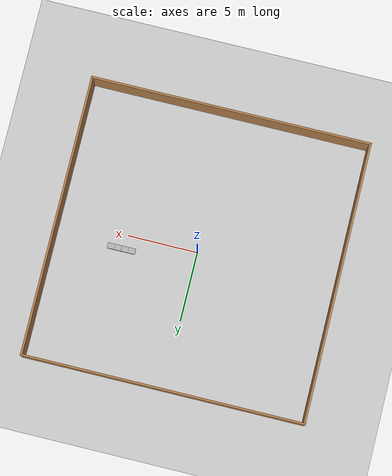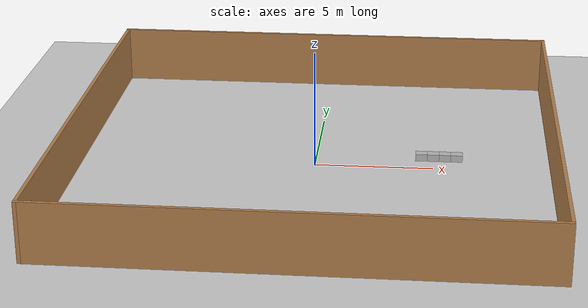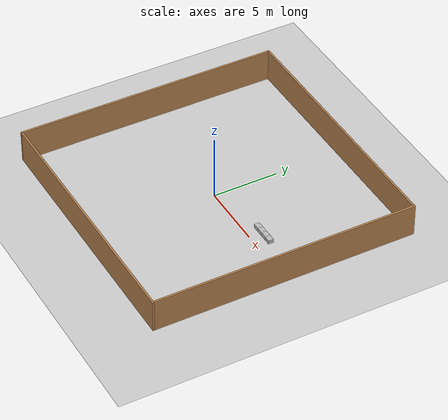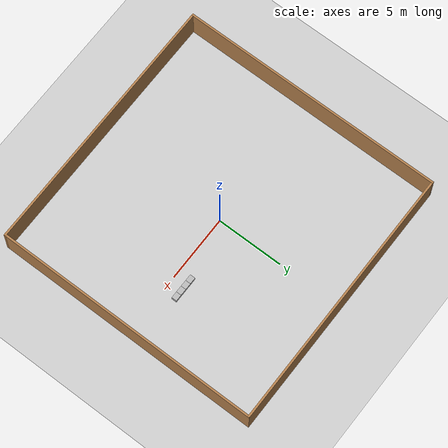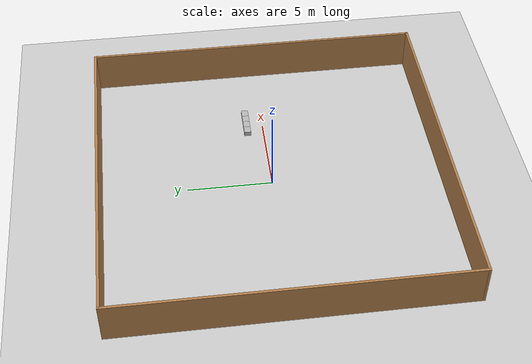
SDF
<sdf version="1.7">
 <world name="default">
  <light name="sun" type="directional">
   <pose>0 0 10 0 -0 0</pose>
   <diffuse>0.8 0.8 0.8 1</diffuse>
   <specular>0.2 0.2 0.2 1</specular>
   <attenuation>
    <range>1000</range>
    <constant>0.9</constant>
    <linear>0.01</linear>
    <quadratic>0.001</quadratic>
   </attenuation>
   <direction>-0.5 0.1 -0.9</direction>
   <spot><inner_angle>0</inner_angle><outer_angle>0</outer_angle><falloff>0</falloff></spot>
  </light>
  <model name="ground_plane">
   <static>1</static>
   <link name="link">
    <collision name="collision">
     <geometry><plane><normal>0 0 1</normal><size>100 100</size></plane></geometry>
     <surface><friction><ode><mu>100</mu><mu2>50</mu2></ode></friction></surface>
    </collision>
    <visual name="visual">
     <cast_shadows>0</cast_shadows>
     <geometry><plane><normal>0 0 1</normal><size>100 100</size></plane></geometry>
     <material>
      <script><uri>file://media/materials/scripts/gazebo.material</uri><name>Gazebo/Grey</name></script>
     </material>
    </visual>
   </link>
  </model>
  <gravity>0 0 -9.8</gravity>
  <magnetic_field>6e-06 2.3e-05 -4.2e-05</magnetic_field>
  <atmosphere type="adiabatic"/>
  <physics type="ode">
   <max_step_size>0.001</max_step_size>
   <real_time_factor>1</real_time_factor>
   <real_time_update_rate>10000</real_time_update_rate>
  </physics>
  <scene><ambient>0.4 0.4 0.4 1</ambient><background>0.7 0.7 0.7 1</background><shadows>1</shadows></scene>
  <spherical_coordinates>
   <surface_model>EARTH_WGS84</surface_model>
   <latitude_deg>0</latitude_deg>
   <longitude_deg>0</longitude_deg>
   <elevation>0</elevation>
   <heading_deg>0</heading_deg>
  </spherical_coordinates>
  <model name="surroundings">
   <link name="Wall_0">
    <collision name="Wall_0_Collision">
     <geometry><box><size>20.15 0.15 2.5</size></box></geometry>
     <pose>0 0 1.25 0 -0 0</pose>
    </collision>
    <visual name="Wall_0_Visual">
     <pose>0 0 1.25 0 -0 0</pose>
     <geometry><box><size>20.15 0.15 2.5</size></box></geometry>
     <material>
      <script><uri>file://media/materials/scripts/gazebo.material</uri><name>Gazebo/Wood</name></script>
      <ambient>1 1 1 1</ambient>
     </material>
     <meta><layer>0</layer></meta>
    </visual>
    <pose>10 0 0 0 -0 -1.5708</pose>
   </link>
   <link name="Wall_1">
    <collision name="Wall_1_Collision">
     <geometry><box><size>20.15 0.15 2.5</size></box></geometry>
     <pose>0 0 1.25 0 -0 0</pose>
    </collision>
    <visual name="Wall_1_Visual">
     <pose>0 0 1.25 0 -0 0</pose>
     <geometry><box><size>20.15 0.15 2.5</size></box></geometry>
     <material>
      <script><uri>file://media/materials/scripts/gazebo.material</uri><name>Gazebo/Wood</name></script>
      <ambient>1 1 1 1</ambient>
     </material>
     <meta><layer>0</layer></meta>
    </visual>
    <pose>0 -10 0 0 -0 3.14159</pose>
   </link>
   <link name="Wall_2">
    <collision name="Wall_2_Collision">
     <geometry><box><size>20.15 0.15 2.5</size></box></geometry>
     <pose>0 0 1.25 0 -0 0</pose>
    </collision>
    <visual name="Wall_2_Visual">
     <pose>0 0 1.25 0 -0 0</pose>
     <geometry><box><size>20.15 0.15 2.5</size></box></geometry>
     <material>
      <script><uri>file://media/materials/scripts/gazebo.material</uri><name>Gazebo/Wood</name></script>
      <ambient>1 1 1 1</ambient>
     </material>
     <meta><layer>0</layer></meta>
    </visual>
    <pose>-10 0 0 0 -0 1.5708</pose>
   </link>
   <link name="Wall_3">
    <collision name="Wall_3_Collision">
     <geometry><box><size>20.15 0.15 2.5</size></box></geometry>
     <pose>0 0 1.25 0 -0 0</pose>
    </collision>
    <visual name="Wall_3_Visual">
     <pose>0 0 1.25 0 -0 0</pose>
     <geometry><box><size>20.15 0.15 2.5</size></box></geometry>
     <material>
      <script><uri>file://media/materials/scripts/gazebo.material</uri><name>Gazebo/Wood</name></script>
      <ambient>1 1 1 1</ambient>
     </material>
     <meta><layer>0</layer></meta>
    </visual>
    <pose>0 10 0 0 -0 0</pose>
   </link>
   <static>1</static>
  </model>
  <model name="cardboard_box_0">
   <pose>4.5 0.999999 0.149 0 -0 3e-06</pose>
   <link name="link">
    <inertial>
     <mass>2</mass>
     <inertia>
      <ixx>0.0416667</ixx>
      <ixy>0</ixy>
      <ixz>0</ixz>
      <iyy>0.0566667</iyy>
      <iyz>0</iyz>
      <izz>0.0683333</izz>
     </inertia>
    </inertial>
    <collision name="collision">
     <geometry><box><size>0.5 0.4 0.3</size></box></geometry>
     <surface>
      <friction><ode><mu>1</mu><mu2>1</mu2></ode></friction>
      <contact><ode><kp>1e+07</kp><kd>1</kd><min_depth>0.001</min_depth><max_vel>0.1</max_vel></ode></contact>
     </surface>
    </collision>
    <visual name="visual">
     <pose>0 0 -0.15 0 -0 0</pose>
     <geometry>
      <mesh><uri>model://cardboard_box/meshes/cardboard_box.dae</uri><scale>1.25932 1.00745 0.755591</scale></mesh>
     </geometry>
    </visual>
   </link>
  </model>
  <model name="cardboard_box_1">
   <pose>4.99999 1 0.149 0 -0 6e-06</pose>
   <link name="link">
    <inertial>
     <mass>2</mass>
     <inertia>
      <ixx>0.0416667</ixx>
      <ixy>0</ixy>
      <ixz>0</ixz>
      <iyy>0.0566667</iyy>
      <iyz>0</iyz>
      <izz>0.0683333</izz>
     </inertia>
    </inertial>
    <collision name="collision">
     <geometry><box><size>0.5 0.4 0.3</size></box></geometry>
     <surface>
      <friction><ode><mu>1</mu><mu2>1</mu2></ode></friction>
      <contact><ode><kp>1e+07</kp><kd>1</kd><min_depth>0.001</min_depth><max_vel>0.1</max_vel></ode></contact>
     </surface>
    </collision>
    <visual name="visual">
     <pose>0 0 -0.15 0 -0 0</pose>
     <geometry>
      <mesh><uri>model://cardboard_box/meshes/cardboard_box.dae</uri><scale>1.25932 1.00745 0.755591</scale></mesh>
     </geometry>
    </visual>
   </link>
  </model>
  <model name="cardboard_box_2">
   <pose>5.49997 1 0.149 -0 -0 -1e-05</pose>
   <link name="link">
    <inertial>
     <mass>2</mass>
     <inertia>
      <ixx>0.0416667</ixx>
      <ixy>0</ixy>
      <ixz>0</ixz>
      <iyy>0.0566667</iyy>
      <iyz>0</iyz>
      <izz>0.0683333</izz>
     </inertia>
    </inertial>
    <collision name="collision">
     <geometry><box><size>0.5 0.4 0.3</size></box></geometry>
     <surface>
      <friction><ode><mu>1</mu><mu2>1</mu2></ode></friction>
      <contact><ode><kp>1e+07</kp><kd>1</kd><min_depth>0.001</min_depth><max_vel>0.1</max_vel></ode></contact>
     </surface>
    </collision>
    <visual name="visual">
     <pose>0 0 -0.15 0 -0 0</pose>
     <geometry>
      <mesh><uri>model://cardboard_box/meshes/cardboard_box.dae</uri><scale>1.25932 1.00745 0.755591</scale></mesh>
     </geometry>
    </visual>
   </link>
  </model>
  <model name="cardboard_box_3">
   <link name="link">
    <inertial>
     <mass>2</mass>
     <inertia>
      <ixx>0.0416667</ixx>
      <ixy>0</ixy>
      <ixz>0</ixz>
      <iyy>0.0566667</iyy>
      <iyz>0</iyz>
      <izz>0.0683333</izz>
     </inertia>
    </inertial>
    <visual name="visual">
     <pose>0 0 -0.15 0 -0 0</pose>
     <geometry>
      <mesh><uri>model://cardboard_box/meshes/cardboard_box.dae</uri><scale>1.25932 1.00745 0.755591</scale></mesh>
     </geometry>
     <material><shader type="pixel"/></material>
    </visual>
    <collision name="collision">
     <geometry><box><size>0.5 0.4 0.3</size></box></geometry>
     <surface>
      <friction>
       <ode><mu>1</mu><mu2>1</mu2><fdir1>0 0 0</fdir1><slip1>0</slip1><slip2>0</slip2></ode>
       <torsional>
        <coefficient>1</coefficient>
        <patch_radius>0</patch_radius>
        <surface_radius>0</surface_radius>
        <use_patch_radius>1</use_patch_radius>
        <ode><slip>0</slip></ode>
       </torsional>
      </friction>
      <bounce><restitution_coefficient>0</restitution_coefficient><threshold>1e+06</threshold></bounce>
      <contact>
       <collide_without_contact>0</collide_without_contact>
       <collide_without_contact_bitmask>1</collide_without_contact_bitmask>
       <collide_bitmask>1</collide_bitmask>
       <ode>
        <soft_cfm>0</soft_cfm>
        <soft_erp>0.2</soft_erp>
        <kp>1e+07</kp>
        <kd>1</kd>
        <max_vel>0.1</max_vel>
        <min_depth>0.001</min_depth>
       </ode>
       <bullet>
        <split_impulse>1</split_impulse>
        <split_impulse_penetration_threshold>-0.01</split_impulse_penetration_threshold>
        <soft_cfm>0</soft_cfm>
        <soft_erp>0.2</soft_erp>
        <kp>1e+07</kp>
        <kd>1</kd>
       </bullet>
      </contact>
     </surface>
    </collision>
   </link>
   <static>0</static>
   <pose>5.99999 0.999995 0.149 -0 -0 -1.6e-05</pose>
  </model>
 </world>
</sdf>
